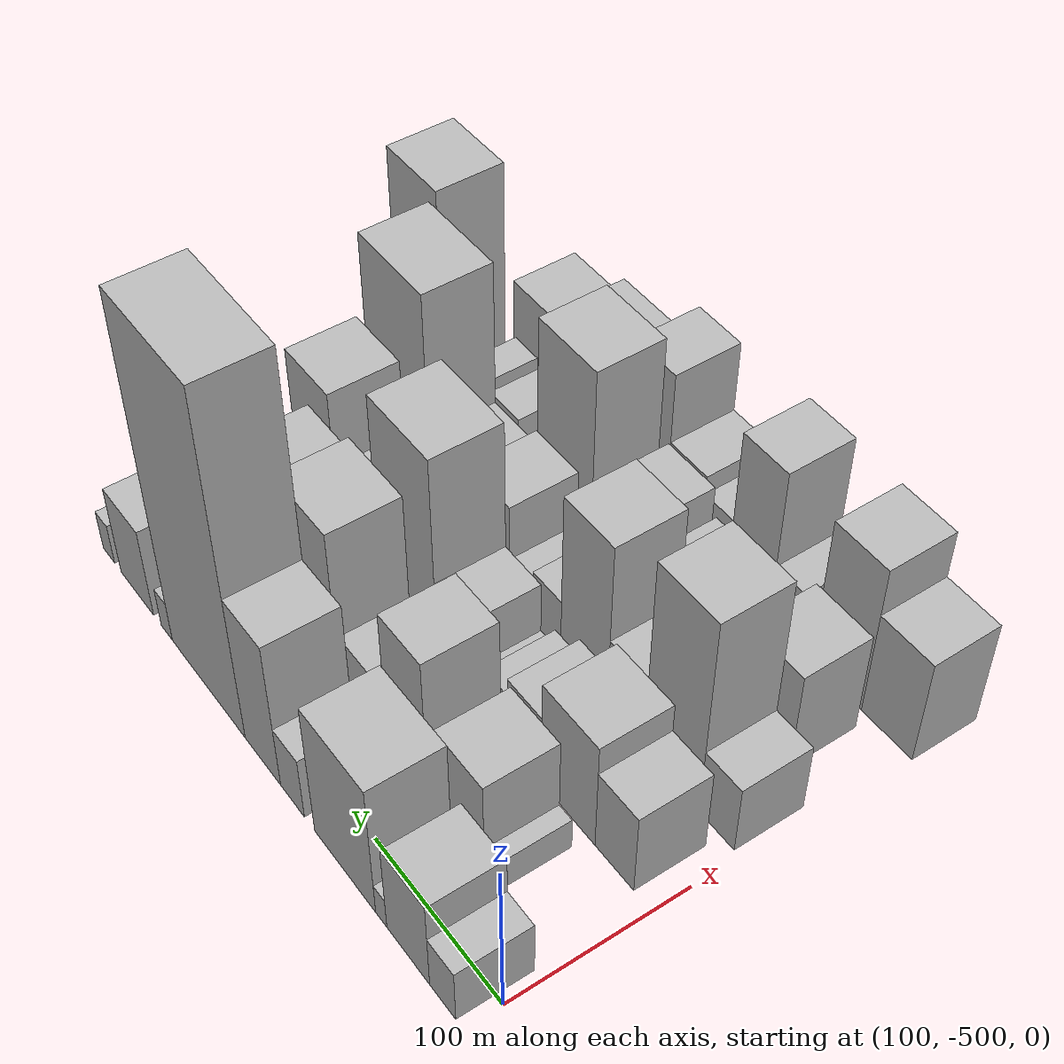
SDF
<sdf version="1.6">
 <world name="default">
  <model name="building_11">
   <static>1</static>
   <pose>100.0000 -484.4417 0 0.000000 0.000000 0.000000</pose>
   <link name="link">
    <pose>0 0 18.00 0 0 0</pose>
    <collision name="collision"><geometry><box><size>40.0000 19.8068 36.0000</size></box></geometry></collision>
    <visual name="visual">
     <cast_shadows>0</cast_shadows>
     <geometry><box><size>40.0000 19.8068 36.0000</size></box></geometry>
     <material>
      <script>
       <uri>model://HANNAS_wall/materials/scripts</uri>
       <uri>model://HANNAS_wall/materials/textures</uri>
       <name>vrc/HANNAS_wall</name>
      </script>
     </material>
    </visual>
   </link>
  </model>
  <model name="building_12">
   <static>1</static>
   <pose>100.0000 -457.7605 0 0.000000 0.000000 0.000000</pose>
   <link name="link">
    <pose>0 0 30.00 0 0 0</pose>
    <collision name="collision"><geometry><box><size>40.0000 33.5557 60.0000</size></box></geometry></collision>
    <visual name="visual">
     <cast_shadows>0</cast_shadows>
     <geometry><box><size>40.0000 33.5557 60.0000</size></box></geometry>
     <material>
      <script>
       <uri>model://HANNAS_wall/materials/scripts</uri>
       <uri>model://HANNAS_wall/materials/textures</uri>
       <name>vrc/HANNAS_wall</name>
      </script>
     </material>
    </visual>
   </link>
  </model>
  <model name="building_13">
   <static>1</static>
   <pose>100.0000 -436.4602 0 0.000000 0.000000 0.000000</pose>
   <link name="link">
    <pose>0 0 10.50 0 0 0</pose>
    <collision name="collision"><geometry><box><size>40.0000 9.0448 21.0000</size></box></geometry></collision>
    <visual name="visual">
     <cast_shadows>0</cast_shadows>
     <geometry><box><size>40.0000 9.0448 21.0000</size></box></geometry>
     <material>
      <script>
       <uri>model://HANNAS_wall/materials/scripts</uri>
       <uri>model://HANNAS_wall/materials/textures</uri>
       <name>vrc/HANNAS_wall</name>
      </script>
     </material>
    </visual>
   </link>
  </model>
  <model name="building_14">
   <static>1</static>
   <pose>100.0000 -406.3923 0 0.000000 0.000000 0.000000</pose>
   <link name="link">
    <pose>0 0 45.00 0 0 0</pose>
    <collision name="collision"><geometry><box><size>40.0000 51.0911 90.0000</size></box></geometry></collision>
    <visual name="visual">
     <cast_shadows>0</cast_shadows>
     <geometry><box><size>40.0000 51.0911 90.0000</size></box></geometry>
     <material>
      <script>
       <uri>model://HANNAS_wall/materials/scripts</uri>
       <uri>model://HANNAS_wall/materials/textures</uri>
       <name>vrc/HANNAS_wall</name>
      </script>
     </material>
    </visual>
   </link>
  </model>
  <model name="building_15">
   <static>1</static>
   <pose>100.0000 -361.3320 0 0.000000 0.000000 0.000000</pose>
   <link name="link">
    <pose>0 0 21.00 0 0 0</pose>
    <collision name="collision"><geometry><box><size>40.0000 21.0296 42.0000</size></box></geometry></collision>
    <visual name="visual">
     <cast_shadows>0</cast_shadows>
     <geometry><box><size>40.0000 21.0296 42.0000</size></box></geometry>
     <material>
      <script>
       <uri>model://HANNAS_wall/materials/scripts</uri>
       <uri>model://HANNAS_wall/materials/textures</uri>
       <name>vrc/HANNAS_wall</name>
      </script>
     </material>
    </visual>
   </link>
  </model>
  <model name="building_16">
   <static>1</static>
   <pose>100.0000 -334.5592 0 0.000000 0.000000 0.000000</pose>
   <link name="link">
    <pose>0 0 49.50 0 0 0</pose>
    <collision name="collision"><geometry><box><size>40.0000 32.5159 99.0000</size></box></geometry></collision>
    <visual name="visual">
     <cast_shadows>0</cast_shadows>
     <geometry><box><size>40.0000 32.5159 99.0000</size></box></geometry>
     <material>
      <script>
       <uri>model://HANNAS_wall/materials/scripts</uri>
       <uri>model://HANNAS_wall/materials/textures</uri>
       <name>vrc/HANNAS_wall</name>
      </script>
     </material>
    </visual>
   </link>
  </model>
  <model name="building_17">
   <static>1</static>
   <pose>100.0000 -282.7788 0 0.000000 0.000000 0.000000</pose>
   <link name="link">
    <pose>0 0 112.50 0 0 0</pose>
    <collision name="collision"><geometry><box><size>40.0000 71.0450 225.0000</size></box></geometry></collision>
    <visual name="visual">
     <cast_shadows>0</cast_shadows>
     <geometry><box><size>40.0000 71.0450 225.0000</size></box></geometry>
     <material>
      <script>
       <uri>model://HANNAS_wall/materials/scripts</uri>
       <uri>model://HANNAS_wall/materials/textures</uri>
       <name>vrc/HANNAS_wall</name>
      </script>
     </material>
    </visual>
   </link>
  </model>
  <model name="building_18">
   <static>1</static>
   <pose>100.0000 -241.5835 0 0.000000 0.000000 0.000000</pose>
   <link name="link">
    <pose>0 0 13.50 0 0 0</pose>
    <collision name="collision"><geometry><box><size>40.0000 11.3455 27.0000</size></box></geometry></collision>
    <visual name="visual">
     <cast_shadows>0</cast_shadows>
     <geometry><box><size>40.0000 11.3455 27.0000</size></box></geometry>
     <material>
      <script>
       <uri>model://HANNAS_wall/materials/scripts</uri>
       <uri>model://HANNAS_wall/materials/textures</uri>
       <name>vrc/HANNAS_wall</name>
      </script>
     </material>
    </visual>
   </link>
  </model>
  <model name="building_19">
   <static>1</static>
   <pose>100.0000 -210.6910 0 0.000000 0.000000 0.000000</pose>
   <link name="link">
    <pose>0 0 30.00 0 0 0</pose>
    <collision name="collision"><geometry><box><size>40.0000 34.4396 60.0000</size></box></geometry></collision>
    <visual name="visual">
     <cast_shadows>0</cast_shadows>
     <geometry><box><size>40.0000 34.4396 60.0000</size></box></geometry>
     <material>
      <script>
       <uri>model://HANNAS_wall/materials/scripts</uri>
       <uri>model://HANNAS_wall/materials/textures</uri>
       <name>vrc/HANNAS_wall</name>
      </script>
     </material>
    </visual>
   </link>
  </model>
  <model name="building_20">
   <static>1</static>
   <pose>100.0000 -180.2853 0 0.000000 0.000000 0.000000</pose>
   <link name="link">
    <pose>0 0 13.50 0 0 0</pose>
    <collision name="collision"><geometry><box><size>40.0000 12.3718 27.0000</size></box></geometry></collision>
    <visual name="visual">
     <cast_shadows>0</cast_shadows>
     <geometry><box><size>40.0000 12.3718 27.0000</size></box></geometry>
     <material>
      <script>
       <uri>model://HANNAS_wall/materials/scripts</uri>
       <uri>model://HANNAS_wall/materials/textures</uri>
       <name>vrc/HANNAS_wall</name>
      </script>
     </material>
    </visual>
   </link>
  </model>
  <model name="building_55">
   <static>1</static>
   <pose>149.0000 -448.6384 0 0.000000 0.000000 0.000000</pose>
   <link name="link">
    <pose>0 0 10.50 0 0 0</pose>
    <collision name="collision"><geometry><box><size>40.0000 9.8285 21.0000</size></box></geometry></collision>
    <visual name="visual">
     <cast_shadows>0</cast_shadows>
     <geometry><box><size>40.0000 9.8285 21.0000</size></box></geometry>
     <material>
      <script>
       <uri>model://HANNAS_wall/materials/scripts</uri>
       <uri>model://HANNAS_wall/materials/textures</uri>
       <name>vrc/HANNAS_wall</name>
      </script>
     </material>
    </visual>
   </link>
  </model>
  <model name="building_56">
   <static>1</static>
   <pose>149.0000 -425.2524 0 0.000000 0.000000 0.000000</pose>
   <link name="link">
    <pose>0 0 33.00 0 0 0</pose>
    <collision name="collision"><geometry><box><size>40.0000 36.9436 66.0000</size></box></geometry></collision>
    <visual name="visual">
     <cast_shadows>0</cast_shadows>
     <geometry><box><size>40.0000 36.9436 66.0000</size></box></geometry>
     <material>
      <script>
       <uri>model://HANNAS_wall/materials/scripts</uri>
       <uri>model://HANNAS_wall/materials/textures</uri>
       <name>vrc/HANNAS_wall</name>
      </script>
     </material>
    </visual>
   </link>
  </model>
  <model name="building_57">
   <static>1</static>
   <pose>149.0000 -382.1029 0 0.000000 0.000000 0.000000</pose>
   <link name="link">
    <pose>0 0 51.00 0 0 0</pose>
    <collision name="collision"><geometry><box><size>40.0000 33.3554 102.0000</size></box></geometry></collision>
    <visual name="visual">
     <cast_shadows>0</cast_shadows>
     <geometry><box><size>40.0000 33.3554 102.0000</size></box></geometry>
     <material>
      <script>
       <uri>model://HANNAS_wall/materials/scripts</uri>
       <uri>model://HANNAS_wall/materials/textures</uri>
       <name>vrc/HANNAS_wall</name>
      </script>
     </material>
    </visual>
   </link>
  </model>
  <model name="building_58">
   <static>1</static>
   <pose>149.0000 -360.3047 0 0.000000 0.000000 0.000000</pose>
   <link name="link">
    <pose>0 0 10.50 0 0 0</pose>
    <collision name="collision"><geometry><box><size>40.0000 10.2410 21.0000</size></box></geometry></collision>
    <visual name="visual">
     <cast_shadows>0</cast_shadows>
     <geometry><box><size>40.0000 10.2410 21.0000</size></box></geometry>
     <material>
      <script>
       <uri>model://HANNAS_wall/materials/scripts</uri>
       <uri>model://HANNAS_wall/materials/textures</uri>
       <name>vrc/HANNAS_wall</name>
      </script>
     </material>
    </visual>
   </link>
  </model>
  <model name="building_59">
   <static>1</static>
   <pose>149.0000 -339.5528 0 0.000000 0.000000 0.000000</pose>
   <link name="link">
    <pose>0 0 24.00 0 0 0</pose>
    <collision name="collision"><geometry><box><size>40.0000 25.2629 48.0000</size></box></geometry></collision>
    <visual name="visual">
     <cast_shadows>0</cast_shadows>
     <geometry><box><size>40.0000 25.2629 48.0000</size></box></geometry>
     <material>
      <script>
       <uri>model://HANNAS_wall/materials/scripts</uri>
       <uri>model://HANNAS_wall/materials/textures</uri>
       <name>vrc/HANNAS_wall</name>
      </script>
     </material>
    </visual>
   </link>
  </model>
  <model name="building_60">
   <static>1</static>
   <pose>149.0000 -301.4753 0 0.000000 0.000000 0.000000</pose>
   <link name="link">
    <pose>0 0 57.00 0 0 0</pose>
    <collision name="collision"><geometry><box><size>40.0000 44.8920 114.0000</size></box></geometry></collision>
    <visual name="visual">
     <cast_shadows>0</cast_shadows>
     <geometry><box><size>40.0000 44.8920 114.0000</size></box></geometry>
     <material>
      <script>
       <uri>model://HANNAS_wall/materials/scripts</uri>
       <uri>model://HANNAS_wall/materials/textures</uri>
       <name>vrc/HANNAS_wall</name>
      </script>
     </material>
    </visual>
   </link>
  </model>
  <model name="building_61">
   <static>1</static>
   <pose>149.0000 -260.5300 0 0.000000 0.000000 0.000000</pose>
   <link name="link">
    <pose>0 0 52.50 0 0 0</pose>
    <collision name="collision"><geometry><box><size>40.0000 36.9986 105.0000</size></box></geometry></collision>
    <visual name="visual">
     <cast_shadows>0</cast_shadows>
     <geometry><box><size>40.0000 36.9986 105.0000</size></box></geometry>
     <material>
      <script>
       <uri>model://HANNAS_wall/materials/scripts</uri>
       <uri>model://HANNAS_wall/materials/textures</uri>
       <name>vrc/HANNAS_wall</name>
      </script>
     </material>
    </visual>
   </link>
  </model>
  <model name="building_62">
   <static>1</static>
   <pose>149.0000 -222.8986 0 0.000000 0.000000 0.000000</pose>
   <link name="link">
    <pose>0 0 36.00 0 0 0</pose>
    <collision name="collision"><geometry><box><size>40.0000 38.2643 72.0000</size></box></geometry></collision>
    <visual name="visual">
     <cast_shadows>0</cast_shadows>
     <geometry><box><size>40.0000 38.2643 72.0000</size></box></geometry>
     <material>
      <script>
       <uri>model://HANNAS_wall/materials/scripts</uri>
       <uri>model://HANNAS_wall/materials/textures</uri>
       <name>vrc/HANNAS_wall</name>
      </script>
     </material>
    </visual>
   </link>
  </model>
  <model name="building_63">
   <static>1</static>
   <pose>149.0000 -193.5696 0 0.000000 0.000000 0.000000</pose>
   <link name="link">
    <pose>0 0 19.50 0 0 0</pose>
    <collision name="collision"><geometry><box><size>40.0000 20.3938 39.0000</size></box></geometry></collision>
    <visual name="visual">
     <cast_shadows>0</cast_shadows>
     <geometry><box><size>40.0000 20.3938 39.0000</size></box></geometry>
     <material>
      <script>
       <uri>model://HANNAS_wall/materials/scripts</uri>
       <uri>model://HANNAS_wall/materials/textures</uri>
       <name>vrc/HANNAS_wall</name>
      </script>
     </material>
    </visual>
   </link>
  </model>
  <model name="building_106">
   <static>1</static>
   <pose>198.0000 -472.9932 0 0.000000 0.000000 0.000000</pose>
   <link name="link">
    <pose>0 0 27.00 0 0 0</pose>
    <collision name="collision"><geometry><box><size>40.0000 28.4594 54.0000</size></box></geometry></collision>
    <visual name="visual">
     <cast_shadows>0</cast_shadows>
     <geometry><box><size>40.0000 28.4594 54.0000</size></box></geometry>
     <material>
      <script>
       <uri>model://HANNAS_wall/materials/scripts</uri>
       <uri>model://HANNAS_wall/materials/textures</uri>
       <name>vrc/HANNAS_wall</name>
      </script>
     </material>
    </visual>
   </link>
  </model>
  <model name="building_107">
   <static>1</static>
   <pose>198.0000 -438.2118 0 0.000000 0.000000 0.000000</pose>
   <link name="link">
    <pose>0 0 36.00 0 0 0</pose>
    <collision name="collision"><geometry><box><size>40.0000 41.1033 72.0000</size></box></geometry></collision>
    <visual name="visual">
     <cast_shadows>0</cast_shadows>
     <geometry><box><size>40.0000 41.1033 72.0000</size></box></geometry>
     <material>
      <script>
       <uri>model://HANNAS_wall/materials/scripts</uri>
       <uri>model://HANNAS_wall/materials/textures</uri>
       <name>vrc/HANNAS_wall</name>
      </script>
     </material>
    </visual>
   </link>
  </model>
  <model name="building_108">
   <static>1</static>
   <pose>198.0000 -404.2111 0 0.000000 0.000000 0.000000</pose>
   <link name="link">
    <pose>0 0 24.00 0 0 0</pose>
    <collision name="collision"><geometry><box><size>40.0000 26.8982 48.0000</size></box></geometry></collision>
    <visual name="visual">
     <cast_shadows>0</cast_shadows>
     <geometry><box><size>40.0000 26.8982 48.0000</size></box></geometry>
     <material>
      <script>
       <uri>model://HANNAS_wall/materials/scripts</uri>
       <uri>model://HANNAS_wall/materials/textures</uri>
       <name>vrc/HANNAS_wall</name>
      </script>
     </material>
    </visual>
   </link>
  </model>
  <model name="building_109">
   <static>1</static>
   <pose>198.0000 -381.4071 0 0.000000 0.000000 0.000000</pose>
   <link name="link">
    <pose>0 0 18.00 0 0 0</pose>
    <collision name="collision"><geometry><box><size>40.0000 18.7098 36.0000</size></box></geometry></collision>
    <visual name="visual">
     <cast_shadows>0</cast_shadows>
     <geometry><box><size>40.0000 18.7098 36.0000</size></box></geometry>
     <material>
      <script>
       <uri>model://HANNAS_wall/materials/scripts</uri>
       <uri>model://HANNAS_wall/materials/textures</uri>
       <name>vrc/HANNAS_wall</name>
      </script>
     </material>
    </visual>
   </link>
  </model>
  <model name="building_110">
   <static>1</static>
   <pose>198.0000 -366.3024 0 0.000000 0.000000 0.000000</pose>
   <link name="link">
    <pose>0 0 12.00 0 0 0</pose>
    <collision name="collision"><geometry><box><size>40.0000 11.4996 24.0000</size></box></geometry></collision>
    <visual name="visual">
     <cast_shadows>0</cast_shadows>
     <geometry><box><size>40.0000 11.4996 24.0000</size></box></geometry>
     <material>
      <script>
       <uri>model://HANNAS_wall/materials/scripts</uri>
       <uri>model://HANNAS_wall/materials/textures</uri>
       <name>vrc/HANNAS_wall</name>
      </script>
     </material>
    </visual>
   </link>
  </model>
  <model name="building_111">
   <static>1</static>
   <pose>198.0000 -346.1902 0 0.000000 0.000000 0.000000</pose>
   <link name="link">
    <pose>0 0 28.50 0 0 0</pose>
    <collision name="collision"><geometry><box><size>40.0000 28.7248 57.0000</size></box></geometry></collision>
    <visual name="visual">
     <cast_shadows>0</cast_shadows>
     <geometry><box><size>40.0000 28.7248 57.0000</size></box></geometry>
     <material>
      <script>
       <uri>model://HANNAS_wall/materials/scripts</uri>
       <uri>model://HANNAS_wall/materials/textures</uri>
       <name>vrc/HANNAS_wall</name>
      </script>
     </material>
    </visual>
   </link>
  </model>
  <model name="building_112">
   <static>1</static>
   <pose>198.0000 -306.9564 0 0.000000 0.000000 0.000000</pose>
   <link name="link">
    <pose>0 0 69.00 0 0 0</pose>
    <collision name="collision"><geometry><box><size>40.0000 49.7427 138.0000</size></box></geometry></collision>
    <visual name="visual">
     <cast_shadows>0</cast_shadows>
     <geometry><box><size>40.0000 49.7427 138.0000</size></box></geometry>
     <material>
      <script>
       <uri>model://HANNAS_wall/materials/scripts</uri>
       <uri>model://HANNAS_wall/materials/textures</uri>
       <name>vrc/HANNAS_wall</name>
      </script>
     </material>
    </visual>
   </link>
  </model>
  <model name="building_113">
   <static>1</static>
   <pose>198.0000 -278.9943 0 0.000000 0.000000 0.000000</pose>
   <link name="link">
    <pose>0 0 7.50 0 0 0</pose>
    <collision name="collision"><geometry><box><size>40.0000 6.1815 15.0000</size></box></geometry></collision>
    <visual name="visual">
     <cast_shadows>0</cast_shadows>
     <geometry><box><size>40.0000 6.1815 15.0000</size></box></geometry>
     <material>
      <script>
       <uri>model://HANNAS_wall/materials/scripts</uri>
       <uri>model://HANNAS_wall/materials/textures</uri>
       <name>vrc/HANNAS_wall</name>
      </script>
     </material>
    </visual>
   </link>
  </model>
  <model name="building_114">
   <static>1</static>
   <pose>198.0000 -260.1103 0 0.000000 0.000000 0.000000</pose>
   <link name="link">
    <pose>0 0 30.00 0 0 0</pose>
    <collision name="collision"><geometry><box><size>40.0000 31.5867 60.0000</size></box></geometry></collision>
    <visual name="visual">
     <cast_shadows>0</cast_shadows>
     <geometry><box><size>40.0000 31.5867 60.0000</size></box></geometry>
     <material>
      <script>
       <uri>model://HANNAS_wall/materials/scripts</uri>
       <uri>model://HANNAS_wall/materials/textures</uri>
       <name>vrc/HANNAS_wall</name>
      </script>
     </material>
    </visual>
   </link>
  </model>
  <model name="building_115">
   <static>1</static>
   <pose>198.0000 -225.0217 0 0.000000 0.000000 0.000000</pose>
   <link name="link">
    <pose>0 0 54.00 0 0 0</pose>
    <collision name="collision"><geometry><box><size>40.0000 38.5906 108.0000</size></box></geometry></collision>
    <visual name="visual">
     <cast_shadows>0</cast_shadows>
     <geometry><box><size>40.0000 38.5906 108.0000</size></box></geometry>
     <material>
      <script>
       <uri>model://HANNAS_wall/materials/scripts</uri>
       <uri>model://HANNAS_wall/materials/textures</uri>
       <name>vrc/HANNAS_wall</name>
      </script>
     </material>
    </visual>
   </link>
  </model>
  <model name="building_158">
   <static>1</static>
   <pose>247.0000 -483.7809 0 0.000000 0.000000 0.000000</pose>
   <link name="link">
    <pose>0 0 22.50 0 0 0</pose>
    <collision name="collision"><geometry><box><size>40.0000 24.9532 45.0000</size></box></geometry></collision>
    <visual name="visual">
     <cast_shadows>0</cast_shadows>
     <geometry><box><size>40.0000 24.9532 45.0000</size></box></geometry>
     <material>
      <script>
       <uri>model://HANNAS_wall/materials/scripts</uri>
       <uri>model://HANNAS_wall/materials/textures</uri>
       <name>vrc/HANNAS_wall</name>
      </script>
     </material>
    </visual>
   </link>
  </model>
  <model name="building_159">
   <static>1</static>
   <pose>247.0000 -450.6455 0 0.000000 0.000000 0.000000</pose>
   <link name="link">
    <pose>0 0 66.00 0 0 0</pose>
    <collision name="collision"><geometry><box><size>40.0000 41.3175 132.0000</size></box></geometry></collision>
    <visual name="visual">
     <cast_shadows>0</cast_shadows>
     <geometry><box><size>40.0000 41.3175 132.0000</size></box></geometry>
     <material>
      <script>
       <uri>model://HANNAS_wall/materials/scripts</uri>
       <uri>model://HANNAS_wall/materials/textures</uri>
       <name>vrc/HANNAS_wall</name>
      </script>
     </material>
    </visual>
   </link>
  </model>
  <model name="building_160">
   <static>1</static>
   <pose>247.0000 -415.8034 0 0.000000 0.000000 0.000000</pose>
   <link name="link">
    <pose>0 0 25.50 0 0 0</pose>
    <collision name="collision"><geometry><box><size>40.0000 28.3667 51.0000</size></box></geometry></collision>
    <visual name="visual">
     <cast_shadows>0</cast_shadows>
     <geometry><box><size>40.0000 28.3667 51.0000</size></box></geometry>
     <material>
      <script>
       <uri>model://HANNAS_wall/materials/scripts</uri>
       <uri>model://HANNAS_wall/materials/textures</uri>
       <name>vrc/HANNAS_wall</name>
      </script>
     </material>
    </visual>
   </link>
  </model>
  <model name="building_161">
   <static>1</static>
   <pose>247.0000 -382.9924 0 0.000000 0.000000 0.000000</pose>
   <link name="link">
    <pose>0 0 57.00 0 0 0</pose>
    <collision name="collision"><geometry><box><size>40.0000 37.2555 114.0000</size></box></geometry></collision>
    <visual name="visual">
     <cast_shadows>0</cast_shadows>
     <geometry><box><size>40.0000 37.2555 114.0000</size></box></geometry>
     <material>
      <script>
       <uri>model://HANNAS_wall/materials/scripts</uri>
       <uri>model://HANNAS_wall/materials/textures</uri>
       <name>vrc/HANNAS_wall</name>
      </script>
     </material>
    </visual>
   </link>
  </model>
  <model name="building_162">
   <static>1</static>
   <pose>247.0000 -352.8262 0 0.000000 0.000000 0.000000</pose>
   <link name="link">
    <pose>0 0 21.00 0 0 0</pose>
    <collision name="collision"><geometry><box><size>40.0000 23.0768 42.0000</size></box></geometry></collision>
    <visual name="visual">
     <cast_shadows>0</cast_shadows>
     <geometry><box><size>40.0000 23.0768 42.0000</size></box></geometry>
     <material>
      <script>
       <uri>model://HANNAS_wall/materials/scripts</uri>
       <uri>model://HANNAS_wall/materials/textures</uri>
       <name>vrc/HANNAS_wall</name>
      </script>
     </material>
    </visual>
   </link>
  </model>
  <model name="building_163">
   <static>1</static>
   <pose>247.0000 -331.6278 0 0.000000 0.000000 0.000000</pose>
   <link name="link">
    <pose>0 0 16.50 0 0 0</pose>
    <collision name="collision"><geometry><box><size>40.0000 19.3199 33.0000</size></box></geometry></collision>
    <visual name="visual">
     <cast_shadows>0</cast_shadows>
     <geometry><box><size>40.0000 19.3199 33.0000</size></box></geometry>
     <material>
      <script>
       <uri>model://HANNAS_wall/materials/scripts</uri>
       <uri>model://HANNAS_wall/materials/textures</uri>
       <name>vrc/HANNAS_wall</name>
      </script>
     </material>
    </visual>
   </link>
  </model>
  <model name="building_164">
   <static>1</static>
   <pose>247.0000 -304.6740 0 0.000000 0.000000 0.000000</pose>
   <link name="link">
    <pose>0 0 34.50 0 0 0</pose>
    <collision name="collision"><geometry><box><size>40.0000 34.5878 69.0000</size></box></geometry></collision>
    <visual name="visual">
     <cast_shadows>0</cast_shadows>
     <geometry><box><size>40.0000 34.5878 69.0000</size></box></geometry>
     <material>
      <script>
       <uri>model://HANNAS_wall/materials/scripts</uri>
       <uri>model://HANNAS_wall/materials/textures</uri>
       <name>vrc/HANNAS_wall</name>
      </script>
     </material>
    </visual>
   </link>
  </model>
  <model name="building_165">
   <static>1</static>
   <pose>247.0000 -269.6949 0 0.000000 0.000000 0.000000</pose>
   <link name="link">
    <pose>0 0 30.00 0 0 0</pose>
    <collision name="collision"><geometry><box><size>40.0000 35.3703 60.0000</size></box></geometry></collision>
    <visual name="visual">
     <cast_shadows>0</cast_shadows>
     <geometry><box><size>40.0000 35.3703 60.0000</size></box></geometry>
     <material>
      <script>
       <uri>model://HANNAS_wall/materials/scripts</uri>
       <uri>model://HANNAS_wall/materials/textures</uri>
       <name>vrc/HANNAS_wall</name>
      </script>
     </material>
    </visual>
   </link>
  </model>
  <model name="building_166">
   <static>1</static>
   <pose>247.0000 -224.6699 0 0.000000 0.000000 0.000000</pose>
   <link name="link">
    <pose>0 0 75.00 0 0 0</pose>
    <collision name="collision"><geometry><box><size>40.0000 54.6799 150.0000</size></box></geometry></collision>
    <visual name="visual">
     <cast_shadows>0</cast_shadows>
     <geometry><box><size>40.0000 54.6799 150.0000</size></box></geometry>
     <material>
      <script>
       <uri>model://HANNAS_wall/materials/scripts</uri>
       <uri>model://HANNAS_wall/materials/textures</uri>
       <name>vrc/HANNAS_wall</name>
      </script>
     </material>
    </visual>
   </link>
  </model>
  <model name="building_206">
   <static>1</static>
   <pose>296.0000 -456.9990 0 0.000000 0.000000 0.000000</pose>
   <link name="link">
    <pose>0 0 33.00 0 0 0</pose>
    <collision name="collision"><geometry><box><size>40.0000 38.4278 66.0000</size></box></geometry></collision>
    <visual name="visual">
     <cast_shadows>0</cast_shadows>
     <geometry><box><size>40.0000 38.4278 66.0000</size></box></geometry>
     <material>
      <script>
       <uri>model://HANNAS_wall/materials/scripts</uri>
       <uri>model://HANNAS_wall/materials/textures</uri>
       <name>vrc/HANNAS_wall</name>
      </script>
     </material>
    </visual>
   </link>
  </model>
  <model name="building_207">
   <static>1</static>
   <pose>296.0000 -424.0173 0 0.000000 0.000000 0.000000</pose>
   <link name="link">
    <pose>0 0 21.00 0 0 0</pose>
    <collision name="collision"><geometry><box><size>40.0000 21.5356 42.0000</size></box></geometry></collision>
    <visual name="visual">
     <cast_shadows>0</cast_shadows>
     <geometry><box><size>40.0000 21.5356 42.0000</size></box></geometry>
     <material>
      <script>
       <uri>model://HANNAS_wall/materials/scripts</uri>
       <uri>model://HANNAS_wall/materials/textures</uri>
       <name>vrc/HANNAS_wall</name>
      </script>
     </material>
    </visual>
   </link>
  </model>
  <model name="building_208">
   <static>1</static>
   <pose>296.0000 -406.7117 0 0.000000 0.000000 0.000000</pose>
   <link name="link">
    <pose>0 0 13.50 0 0 0</pose>
    <collision name="collision"><geometry><box><size>40.0000 13.0756 27.0000</size></box></geometry></collision>
    <visual name="visual">
     <cast_shadows>0</cast_shadows>
     <geometry><box><size>40.0000 13.0756 27.0000</size></box></geometry>
     <material>
      <script>
       <uri>model://HANNAS_wall/materials/scripts</uri>
       <uri>model://HANNAS_wall/materials/textures</uri>
       <name>vrc/HANNAS_wall</name>
      </script>
     </material>
    </visual>
   </link>
  </model>
  <model name="building_209">
   <static>1</static>
   <pose>296.0000 -380.4439 0 0.000000 0.000000 0.000000</pose>
   <link name="link">
    <pose>0 0 24.00 0 0 0</pose>
    <collision name="collision"><geometry><box><size>40.0000 25.4599 48.0000</size></box></geometry></collision>
    <visual name="visual">
     <cast_shadows>0</cast_shadows>
     <geometry><box><size>40.0000 25.4599 48.0000</size></box></geometry>
     <material>
      <script>
       <uri>model://HANNAS_wall/materials/scripts</uri>
       <uri>model://HANNAS_wall/materials/textures</uri>
       <name>vrc/HANNAS_wall</name>
      </script>
     </material>
    </visual>
   </link>
  </model>
  <model name="building_210">
   <static>1</static>
   <pose>296.0000 -346.7444 0 0.000000 0.000000 0.000000</pose>
   <link name="link">
    <pose>0 0 33.00 0 0 0</pose>
    <collision name="collision"><geometry><box><size>40.0000 35.9390 66.0000</size></box></geometry></collision>
    <visual name="visual">
     <cast_shadows>0</cast_shadows>
     <geometry><box><size>40.0000 35.9390 66.0000</size></box></geometry>
     <material>
      <script>
       <uri>model://HANNAS_wall/materials/scripts</uri>
       <uri>model://HANNAS_wall/materials/textures</uri>
       <name>vrc/HANNAS_wall</name>
      </script>
     </material>
    </visual>
   </link>
  </model>
  <model name="building_211">
   <static>1</static>
   <pose>296.0000 -298.7966 0 0.000000 0.000000 0.000000</pose>
   <link name="link">
    <pose>0 0 64.50 0 0 0</pose>
    <collision name="collision"><geometry><box><size>40.0000 45.9568 129.0000</size></box></geometry></collision>
    <visual name="visual">
     <cast_shadows>0</cast_shadows>
     <geometry><box><size>40.0000 45.9568 129.0000</size></box></geometry>
     <material>
      <script>
       <uri>model://HANNAS_wall/materials/scripts</uri>
       <uri>model://HANNAS_wall/materials/textures</uri>
       <name>vrc/HANNAS_wall</name>
      </script>
     </material>
    </visual>
   </link>
  </model>
  <model name="building_212">
   <static>1</static>
   <pose>296.0000 -267.4237 0 0.000000 0.000000 0.000000</pose>
   <link name="link">
    <pose>0 0 15.00 0 0 0</pose>
    <collision name="collision"><geometry><box><size>40.0000 16.7889 30.0000</size></box></geometry></collision>
    <visual name="visual">
     <cast_shadows>0</cast_shadows>
     <geometry><box><size>40.0000 16.7889 30.0000</size></box></geometry>
     <material>
      <script>
       <uri>model://HANNAS_wall/materials/scripts</uri>
       <uri>model://HANNAS_wall/materials/textures</uri>
       <name>vrc/HANNAS_wall</name>
      </script>
     </material>
    </visual>
   </link>
  </model>
  <model name="building_213">
   <static>1</static>
   <pose>296.0000 -246.5369 0 0.000000 0.000000 0.000000</pose>
   <link name="link">
    <pose>0 0 24.00 0 0 0</pose>
    <collision name="collision"><geometry><box><size>40.0000 24.9847 48.0000</size></box></geometry></collision>
    <visual name="visual">
     <cast_shadows>0</cast_shadows>
     <geometry><box><size>40.0000 24.9847 48.0000</size></box></geometry>
     <material>
      <script>
       <uri>model://HANNAS_wall/materials/scripts</uri>
       <uri>model://HANNAS_wall/materials/textures</uri>
       <name>vrc/HANNAS_wall</name>
      </script>
     </material>
    </visual>
   </link>
  </model>
  <model name="building_214">
   <static>1</static>
   <pose>296.0000 -228.1272 0 0.000000 0.000000 0.000000</pose>
   <link name="link">
    <pose>0 0 12.00 0 0 0</pose>
    <collision name="collision"><geometry><box><size>40.0000 11.8349 24.0000</size></box></geometry></collision>
    <visual name="visual">
     <cast_shadows>0</cast_shadows>
     <geometry><box><size>40.0000 11.8349 24.0000</size></box></geometry>
     <material>
      <script>
       <uri>model://HANNAS_wall/materials/scripts</uri>
       <uri>model://HANNAS_wall/materials/textures</uri>
       <name>vrc/HANNAS_wall</name>
      </script>
     </material>
    </visual>
   </link>
  </model>
  <model name="building_215">
   <static>1</static>
   <pose>296.0000 -209.3689 0 0.000000 0.000000 0.000000</pose>
   <link name="link">
    <pose>0 0 19.50 0 0 0</pose>
    <collision name="collision"><geometry><box><size>40.0000 19.6816 39.0000</size></box></geometry></collision>
    <visual name="visual">
     <cast_shadows>0</cast_shadows>
     <geometry><box><size>40.0000 19.6816 39.0000</size></box></geometry>
     <material>
      <script>
       <uri>model://HANNAS_wall/materials/scripts</uri>
       <uri>model://HANNAS_wall/materials/textures</uri>
       <name>vrc/HANNAS_wall</name>
      </script>
     </material>
    </visual>
   </link>
  </model>
  <model name="building_216">
   <static>1</static>
   <pose>296.0000 -167.2701 0 0.000000 0.000000 0.000000</pose>
   <link name="link">
    <pose>0 0 73.50 0 0 0</pose>
    <collision name="collision"><geometry><box><size>40.0000 44.5161 147.0000</size></box></geometry></collision>
    <visual name="visual">
     <cast_shadows>0</cast_shadows>
     <geometry><box><size>40.0000 44.5161 147.0000</size></box></geometry>
     <material>
      <script>
       <uri>model://HANNAS_wall/materials/scripts</uri>
       <uri>model://HANNAS_wall/materials/textures</uri>
       <name>vrc/HANNAS_wall</name>
      </script>
     </material>
    </visual>
   </link>
  </model>
  <model name="building_257">
   <static>1</static>
   <pose>345.0000 -487.6703 0 0.000000 0.000000 0.000000</pose>
   <link name="link">
    <pose>0 0 34.50 0 0 0</pose>
    <collision name="collision"><geometry><box><size>40.0000 34.9146 69.0000</size></box></geometry></collision>
    <visual name="visual">
     <cast_shadows>0</cast_shadows>
     <geometry><box><size>40.0000 34.9146 69.0000</size></box></geometry>
     <material>
      <script>
       <uri>model://HANNAS_wall/materials/scripts</uri>
       <uri>model://HANNAS_wall/materials/textures</uri>
       <name>vrc/HANNAS_wall</name>
      </script>
     </material>
    </visual>
   </link>
  </model>
  <model name="building_258">
   <static>1</static>
   <pose>345.0000 -452.2076 0 0.000000 0.000000 0.000000</pose>
   <link name="link">
    <pose>0 0 49.50 0 0 0</pose>
    <collision name="collision"><geometry><box><size>40.0000 36.0108 99.0000</size></box></geometry></collision>
    <visual name="visual">
     <cast_shadows>0</cast_shadows>
     <geometry><box><size>40.0000 36.0108 99.0000</size></box></geometry>
     <material>
      <script>
       <uri>model://HANNAS_wall/materials/scripts</uri>
       <uri>model://HANNAS_wall/materials/textures</uri>
       <name>vrc/HANNAS_wall</name>
      </script>
     </material>
    </visual>
   </link>
  </model>
  <model name="building_259">
   <static>1</static>
   <pose>345.0000 -413.4041 0 0.000000 0.000000 0.000000</pose>
   <link name="link">
    <pose>0 0 19.50 0 0 0</pose>
    <collision name="collision"><geometry><box><size>40.0000 21.5962 39.0000</size></box></geometry></collision>
    <visual name="visual">
     <cast_shadows>0</cast_shadows>
     <geometry><box><size>40.0000 21.5962 39.0000</size></box></geometry>
     <material>
      <script>
       <uri>model://HANNAS_wall/materials/scripts</uri>
       <uri>model://HANNAS_wall/materials/textures</uri>
       <name>vrc/HANNAS_wall</name>
      </script>
     </material>
    </visual>
   </link>
  </model>
  <model name="building_260">
   <static>1</static>
   <pose>345.0000 -386.3586 0 0.000000 0.000000 0.000000</pose>
   <link name="link">
    <pose>0 0 51.00 0 0 0</pose>
    <collision name="collision"><geometry><box><size>40.0000 32.4948 102.0000</size></box></geometry></collision>
    <visual name="visual">
     <cast_shadows>0</cast_shadows>
     <geometry><box><size>40.0000 32.4948 102.0000</size></box></geometry>
     <material>
      <script>
       <uri>model://HANNAS_wall/materials/scripts</uri>
       <uri>model://HANNAS_wall/materials/textures</uri>
       <name>vrc/HANNAS_wall</name>
      </script>
     </material>
    </visual>
   </link>
  </model>
  <model name="building_261">
   <static>1</static>
   <pose>345.0000 -359.3277 0 0.000000 0.000000 0.000000</pose>
   <link name="link">
    <pose>0 0 21.00 0 0 0</pose>
    <collision name="collision"><geometry><box><size>40.0000 21.5670 42.0000</size></box></geometry></collision>
    <visual name="visual">
     <cast_shadows>0</cast_shadows>
     <geometry><box><size>40.0000 21.5670 42.0000</size></box></geometry>
     <material>
      <script>
       <uri>model://HANNAS_wall/materials/scripts</uri>
       <uri>model://HANNAS_wall/materials/textures</uri>
       <name>vrc/HANNAS_wall</name>
      </script>
     </material>
    </visual>
   </link>
  </model>
  <model name="building_262">
   <static>1</static>
   <pose>345.0000 -334.1555 0 0.000000 0.000000 0.000000</pose>
   <link name="link">
    <pose>0 0 27.00 0 0 0</pose>
    <collision name="collision"><geometry><box><size>40.0000 28.7774 54.0000</size></box></geometry></collision>
    <visual name="visual">
     <cast_shadows>0</cast_shadows>
     <geometry><box><size>40.0000 28.7774 54.0000</size></box></geometry>
     <material>
      <script>
       <uri>model://HANNAS_wall/materials/scripts</uri>
       <uri>model://HANNAS_wall/materials/textures</uri>
       <name>vrc/HANNAS_wall</name>
      </script>
     </material>
    </visual>
   </link>
  </model>
  <model name="building_263">
   <static>1</static>
   <pose>345.0000 -303.6249 0 0.000000 0.000000 0.000000</pose>
   <link name="link">
    <pose>0 0 49.50 0 0 0</pose>
    <collision name="collision"><geometry><box><size>40.0000 32.2837 99.0000</size></box></geometry></collision>
    <visual name="visual">
     <cast_shadows>0</cast_shadows>
     <geometry><box><size>40.0000 32.2837 99.0000</size></box></geometry>
     <material>
      <script>
       <uri>model://HANNAS_wall/materials/scripts</uri>
       <uri>model://HANNAS_wall/materials/textures</uri>
       <name>vrc/HANNAS_wall</name>
      </script>
     </material>
    </visual>
   </link>
  </model>
  <model name="building_264">
   <static>1</static>
   <pose>345.0000 -273.7482 0 0.000000 0.000000 0.000000</pose>
   <link name="link">
    <pose>0 0 9.00 0 0 0</pose>
    <collision name="collision"><geometry><box><size>40.0000 7.4699 18.0000</size></box></geometry></collision>
    <visual name="visual">
     <cast_shadows>0</cast_shadows>
     <geometry><box><size>40.0000 7.4699 18.0000</size></box></geometry>
     <material>
      <script>
       <uri>model://HANNAS_wall/materials/scripts</uri>
       <uri>model://HANNAS_wall/materials/textures</uri>
       <name>vrc/HANNAS_wall</name>
      </script>
     </material>
    </visual>
   </link>
  </model>
  <model name="building_265">
   <static>1</static>
   <pose>345.0000 -248.7898 0 0.000000 0.000000 0.000000</pose>
   <link name="link">
    <pose>0 0 37.50 0 0 0</pose>
    <collision name="collision"><geometry><box><size>40.0000 42.4468 75.0000</size></box></geometry></collision>
    <visual name="visual">
     <cast_shadows>0</cast_shadows>
     <geometry><box><size>40.0000 42.4468 75.0000</size></box></geometry>
     <material>
      <script>
       <uri>model://HANNAS_wall/materials/scripts</uri>
       <uri>model://HANNAS_wall/materials/textures</uri>
       <name>vrc/HANNAS_wall</name>
      </script>
     </material>
    </visual>
   </link>
  </model>
  <model name="building_266">
   <static>1</static>
   <pose>345.0000 -201.5249 0 0.000000 0.000000 0.000000</pose>
   <link name="link">
    <pose>0 0 31.50 0 0 0</pose>
    <collision name="collision"><geometry><box><size>40.0000 34.0830 63.0000</size></box></geometry></collision>
    <visual name="visual">
     <cast_shadows>0</cast_shadows>
     <geometry><box><size>40.0000 34.0830 63.0000</size></box></geometry>
     <material>
      <script>
       <uri>model://HANNAS_wall/materials/scripts</uri>
       <uri>model://HANNAS_wall/materials/textures</uri>
       <name>vrc/HANNAS_wall</name>
      </script>
     </material>
    </visual>
   </link>
  </model>
 </world>
</sdf>
